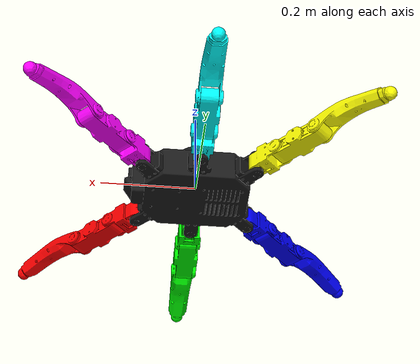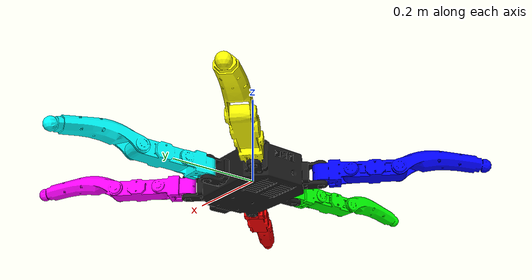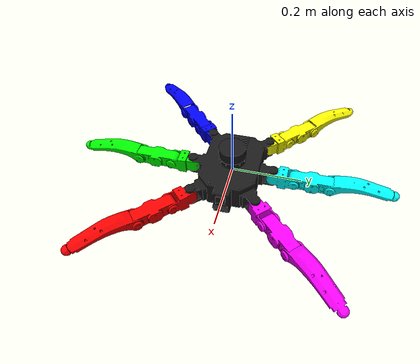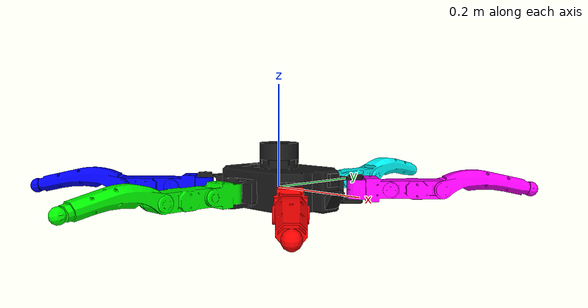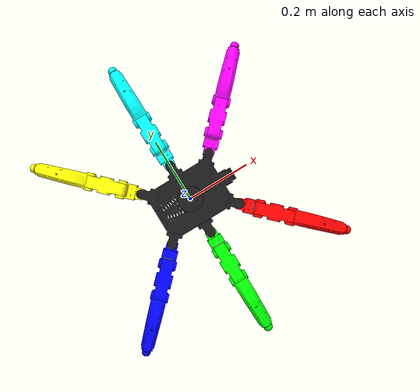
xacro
<robot xmlns:xacro="http://ros.org/wiki/xacro" name="hexapod">

  <xacro:arg name="controllers_file" default=""/>
  <!-- Waveshare ST3215 at 12 V: 2.94 N·m stall torque, 0.222 s/60° no-load speed -->
  <xacro:property name="servo_effort" value="2.94"/>
  <xacro:property name="servo_velocity" value="4.7"/>
  <!-- Femur range from the CAD meshes: raising it hits the coxa bracket at -100 deg, lowering it
       with the knee folded puts the tibia into the body at +86 deg. Both ~10 deg inside contact. -->
  <xacro:property name="femur_lower" value="-1.6"/>
  <xacro:property name="femur_upper" value="1.4"/>
  <xacro:property name="tibia_lower" value="-0.78"/>
  <xacro:property name="tibia_upper" value="2.63"/>
  <!-- ros2_control hardware: gazebo, mock or st3215 (see hexapod.ros2_control.xacro) -->
  <xacro:arg name="hardware" default="mock"/>
  <xacro:arg name="serial_port" default="/dev/ttyAMA0"/>

  <!-- ================= CONSTANTS ================= -->
  <!-- Measured from Hexapod_V6.1 (joint caps and feet). base_link sits on the hip plane, the
       height of the femur axes, 33.85 mm above the bottom of the body. -->
  <xacro:property name="coxa_length" value="0.063"/>    <!-- coxa axis to femur axis, level -->
  <xacro:property name="femur_length" value="0.1"/>     <!-- femur axis to knee axis -->
  <!-- Knee axis to the bottom of the foot, along the straight line through the curved tibia
       (171.95 mm to the foot ball's centre, plus its 14 mm radius) -->
  <xacro:property name="tibia_length" value="0.186"/>
  <xacro:property name="middle_leg_y" value="0.11836"/>
  <xacro:property name="corner_leg_x" value="0.11916"/>
  <xacro:property name="corner_leg_y" value="0.08952"/>
  <!-- Meshes are exported from the STEP in mm, already in each link's frame. The tibia's shank sits
       where tibia_length assumes, its foot ball 171.9 mm from the knee. -->
  <xacro:property name="mesh_scale" value="0.001 0.001 0.001"/>

  <!-- Masses and inertias from the CAD (scripts/mass_properties.py) -->
  <xacro:include filename="$(find hexapod_description)/urdf/hexapod.inertials.xacro"/>

  <!-- ================= MATERIALS ================= -->
  <material name="black"><color rgba="0.1 0.1 0.1 1"/></material>
  <material name="red"><color rgba="1 0 0 1"/></material>
  <material name="green"><color rgba="0 1 0 1"/></material>
  <material name="blue"><color rgba="0 0 1 1"/></material>
  <material name="yellow"><color rgba="1 1 0 1"/></material>
  <material name="cyan"><color rgba="0 1 1 1"/></material>
  <material name="magenta"><color rgba="1 0 1 1"/></material>

  <!-- ================= BASE ================= -->
  <link name="base_link">
    <visual>
      <geometry>
        <mesh filename="package://hexapod_description/meshes/body.stl" scale="${mesh_scale}"/>
      </geometry>
      <material name="black"/>
    </visual>
    <collision>
      <geometry>
        <mesh filename="package://hexapod_description/meshes/body.stl" scale="${mesh_scale}"/>
      </geometry>
    </collision>
    <xacro:hexapod_base_inertial/>
  </link>

<!-- ================= LEG LINKS ================= -->
<!-- side: left or right, the left legs being mirror images of the right -->
<xacro:macro name="leg" params="name side x_offset y_offset yaw colour">

  <!-- COXA -->
  <link name="${name}_coxa">
    <visual>
      <geometry>
        <mesh filename="package://hexapod_description/meshes/coxa_${side}.stl" scale="${mesh_scale}"/>
      </geometry>
      <material name="${colour}"/>
    </visual>
    <collision>
      <geometry>
        <mesh filename="package://hexapod_description/meshes/coxa_${side}.stl" scale="${mesh_scale}"/>
      </geometry>
    </collision>
    <xacro:hexapod_leg_inertial link="coxa" side="${side}"/>
  </link>

  <!-- FEMUR -->
  <link name="${name}_femur">
    <visual>
      <geometry>
        <mesh filename="package://hexapod_description/meshes/femur_${side}.stl" scale="${mesh_scale}"/>
      </geometry>
      <material name="${colour}"/>
    </visual>
    <collision>
      <geometry>
        <mesh filename="package://hexapod_description/meshes/femur_${side}.stl" scale="${mesh_scale}"/>
      </geometry>
    </collision>
    <xacro:hexapod_leg_inertial link="femur" side="${side}"/>
  </link>

  <!-- TIBIA -->
  <link name="${name}_tibia">
    <visual>
      <geometry>
        <mesh filename="package://hexapod_description/meshes/tibia_${side}.stl" scale="${mesh_scale}"/>
      </geometry>
      <material name="${colour}"/>
    </visual>
    <collision>
      <geometry>
        <mesh filename="package://hexapod_description/meshes/tibia_${side}.stl" scale="${mesh_scale}"/>
      </geometry>
    </collision>
    <xacro:hexapod_leg_inertial link="tibia" side="${side}"/>
  </link>

  <!-- COXA JOINT -->
  <joint name="${name}_coxa_joint" type="revolute">
    <parent link="base_link"/>
    <child link="${name}_coxa"/>
    <origin xyz="${x_offset} ${y_offset} 0" rpy="0 0 ${yaw}"/>
    <axis xyz="0 0 1"/>
    <limit lower="-1.57" upper="1.57" effort="${servo_effort}" velocity="${servo_velocity}"/>
  </joint>

  <!-- FEMUR JOINT -->
  <joint name="${name}_femur_joint" type="revolute">
    <parent link="${name}_coxa"/>
    <child link="${name}_femur"/>
    <origin xyz="${coxa_length} 0 0" rpy="0 0 0"/>
    <axis xyz="0 1 0"/>
    <limit lower="${femur_lower}" upper="${femur_upper}" effort="${servo_effort}" velocity="${servo_velocity}"/>
  </joint>

  <!-- TIBIA JOINT -->
  <joint name="${name}_tibia_joint" type="revolute">
    <parent link="${name}_femur"/>
    <child link="${name}_tibia"/>
    <origin xyz="${femur_length} 0 0" rpy="0 0 0"/>  <!-- 0: in line with the femur -->
    <axis xyz="0 1 0"/>
    <limit lower="${tibia_lower}" upper="${tibia_upper}" effort="${servo_effort}" velocity="${servo_velocity}"/>
  </joint>

  <!-- COXA TRANSMISSION -->
  <transmission name="${name}_coxa_trans">
    <type>transmission_interface/SimpleTransmission</type>
    <joint name="${name}_coxa_joint">
      <hardwareInterface>PositionJointInterface</hardwareInterface>
    </joint>
    <actuator name="${name}_coxa_motor">
      <hardwareInterface>PositionJointInterface</hardwareInterface>
      <mechanicalReduction>1</mechanicalReduction>
    </actuator>
  </transmission>

  <!-- FEMUR TRANSMISSION -->
  <transmission name="${name}_femur_trans">
    <type>transmission_interface/SimpleTransmission</type>
    <joint name="${name}_femur_joint">
      <hardwareInterface>PositionJointInterface</hardwareInterface>
    </joint>
    <actuator name="${name}_femur_motor">
      <hardwareInterface>PositionJointInterface</hardwareInterface>
      <mechanicalReduction>1</mechanicalReduction>
    </actuator>
  </transmission>

  <!-- TIBIA TRANSMISSION -->
  <transmission name="${name}_tibia_trans">
    <type>transmission_interface/SimpleTransmission</type>
    <joint name="${name}_tibia_joint">
      <hardwareInterface>PositionJointInterface</hardwareInterface>
    </joint>
    <actuator name="${name}_tibia_motor">
      <hardwareInterface>PositionJointInterface</hardwareInterface>
      <mechanicalReduction>1</mechanicalReduction>
    </actuator>
  </transmission>

</xacro:macro>

  <!-- ================= LEGS ================= -->
  <!-- Body frame follows REP 103: +x forward, +y left, +z up -->

  <!-- Front right -->
  <xacro:leg name="leg1" side="right" x_offset="${corner_leg_x}" y_offset="${-corner_leg_y}" yaw="${-pi / 4}" colour="red"/>

  <!-- Middle right -->
  <xacro:leg name="leg2" side="right" x_offset="0" y_offset="${-middle_leg_y}" yaw="${-pi / 2}" colour="green"/>

  <!-- Rear right -->
  <xacro:leg name="leg3" side="right" x_offset="${-corner_leg_x}" y_offset="${-corner_leg_y}" yaw="${-3 * pi / 4}" colour="blue"/>

  <!-- Rear left -->
  <xacro:leg name="leg4" side="left" x_offset="${-corner_leg_x}" y_offset="${corner_leg_y}" yaw="${3 * pi / 4}" colour="yellow"/>

  <!-- Middle left -->
  <xacro:leg name="leg5" side="left" x_offset="0" y_offset="${middle_leg_y}" yaw="${pi / 2}" colour="cyan"/>

  <!-- Front left -->
  <xacro:leg name="leg6" side="left" x_offset="${corner_leg_x}" y_offset="${corner_leg_y}" yaw="${pi / 4}" colour="magenta"/>

  <!-- ================= IMU ================= -->
  <link name="imu_link"/>

  <joint name="imu_joint" type="fixed">
    <parent link="base_link"/>
    <child link="imu_link"/>
    <origin xyz="0.0 0.0 0.03" rpy="0 0 0"/>
  </joint>

  <!-- ================= LIDAR ================= -->
  <xacro:include filename="$(find hexapod_description)/urdf/hexapod.lidar.xacro"/>
  <xacro:hexapod_lidar/>

  <!-- ================= CAMERAS ================= -->
  <xacro:include filename="$(find hexapod_description)/urdf/hexapod.cameras.xacro"/>
  <xacro:hexapod_cameras/>

  <!-- ================= ROS2 CONTROL ================= -->
  <xacro:include filename="$(find hexapod_description)/urdf/hexapod.ros2_control.xacro"/>
  <xacro:hexapod_ros2_control hardware="$(arg hardware)" serial_port="$(arg serial_port)"/>

  <xacro:if value="${'$(arg hardware)' == 'gazebo'}">
    <gazebo>
      <plugin name="gz_ros2_control::GazeboSimROS2ControlPlugin" filename="libgz_ros2_control-system.so">
        <parameters>$(arg controllers_file)</parameters>
      </plugin>
    </gazebo>
  </xacro:if>

</robot>

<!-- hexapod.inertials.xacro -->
<!-- Generated by scripts/mass_properties.py from Hexapod_V6.1.step, edit that instead.
     Whole robot 3.323 kg. Printed parts are at 60% of solid until weighed. -->
<robot xmlns:xacro="http://ros.org/wiki/xacro">

  <xacro:macro name="hexapod_base_inertial">
    <inertial>
      <mass value="1.1082"/>
      <origin xyz="-0.00433 0.00009 0.00993"/>
      <inertia ixx="3.4133e-03" ixy="-1.1081e-06" ixz="-5.7272e-05" iyy="5.8450e-03" iyz="6.0138e-08" izz="7.2937e-03"/>
    </inertial>
  </xacro:macro>

  <!-- link: coxa, femur or tibia; side: left or right -->
  <xacro:macro name="hexapod_leg_inertial" params="link side">
    <xacro:if value="${link == 'coxa' and side == 'left'}">
      <inertial>
        <mass value="0.0934"/>
        <origin xyz="0.02018 0.00006 -0.00074"/>
        <inertia ixx="2.3501e-05" ixy="6.6404e-10" ixz="3.6137e-07" iyy="4.3357e-05" iyz="1.7523e-08" izz="4.4608e-05"/>
      </inertial>
    </xacro:if>
    <xacro:if value="${link == 'coxa' and side == 'right'}">
      <inertial>
        <mass value="0.0934"/>
        <origin xyz="0.02018 -0.00006 -0.00074"/>
        <inertia ixx="2.3501e-05" ixy="-6.6404e-10" ixz="3.6137e-07" iyy="4.3357e-05" iyz="-1.7523e-08" izz="4.4608e-05"/>
      </inertial>
    </xacro:if>
    <xacro:if value="${link == 'femur' and side == 'left'}">
      <inertial>
        <mass value="0.1724"/>
        <origin xyz="0.05000 0.00002 -0.00000"/>
        <inertia ixx="3.3923e-05" ixy="-4.3970e-14" ixz="-4.0729e-07" iyy="2.3291e-04" iyz="-2.4257e-14" izz="2.4153e-04"/>
      </inertial>
    </xacro:if>
    <xacro:if value="${link == 'femur' and side == 'right'}">
      <inertial>
        <mass value="0.1724"/>
        <origin xyz="0.05000 -0.00002 -0.00000"/>
        <inertia ixx="3.3923e-05" ixy="4.3970e-14" ixz="-4.0729e-07" iyy="2.3291e-04" iyz="2.4257e-14" izz="2.4153e-04"/>
      </inertial>
    </xacro:if>
    <xacro:if value="${link == 'tibia' and side == 'left'}">
      <inertial>
        <mass value="0.1034"/>
        <origin xyz="0.07831 -0.00000 0.01279"/>
        <inertia ixx="2.7891e-05" ixy="4.6243e-10" ixz="1.3841e-05" iyy="2.3494e-04" iyz="-2.0572e-10" izz="2.3960e-04"/>
      </inertial>
    </xacro:if>
    <xacro:if value="${link == 'tibia' and side == 'right'}">
      <inertial>
        <mass value="0.1034"/>
        <origin xyz="0.07831 0.00000 0.01279"/>
        <inertia ixx="2.7891e-05" ixy="-4.6243e-10" ixz="1.3841e-05" iyy="2.3494e-04" iyz="2.0572e-10" izz="2.3960e-04"/>
      </inertial>
    </xacro:if>
  </xacro:macro>

</robot>

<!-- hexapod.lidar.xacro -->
<robot xmlns:xacro="http://ros.org/wiki/xacro">

  <!--
    RPLIDAR A2M12 mount, shared by the real and Gazebo models so they stay in the same place.
    Placed as on the V6.1 body (Hexapod_V6.1.step).
  -->
  <xacro:property name="lidar_x" value="0.0"/>
  <xacro:property name="lidar_y" value="0.0"/>
  <xacro:property name="lidar_z" value="0.067"/>
  <xacro:property name="lidar_radius" value="0.038"/>
  <xacro:property name="lidar_height" value="0.041"/>

  <xacro:macro name="hexapod_lidar">
    <link name="lidar_link">
      <visual>
        <geometry><cylinder length="${lidar_height}" radius="${lidar_radius}"/></geometry>
        <material name="black"/>
      </visual>
      <collision>
        <geometry><cylinder length="${lidar_height}" radius="${lidar_radius}"/></geometry>
      </collision>
      <!-- Its mass is in base_link's inertial (hexapod.inertials.xacro); fixed joints are merged into base_link -->
      <inertial>
        <mass value="0.001"/>
        <inertia ixx="1e-8" ixy="0" ixz="0" iyy="1e-8" iyz="0" izz="1e-8"/>
      </inertial>
    </link>

    <joint name="lidar_joint" type="fixed">
      <parent link="base_link"/>
      <child link="lidar_link"/>
      <origin xyz="${lidar_x} ${lidar_y} ${lidar_z}" rpy="0 0 0"/>
    </joint>
  </xacro:macro>

</robot>

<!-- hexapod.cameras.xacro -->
<robot xmlns:xacro="http://ros.org/wiki/xacro">

  <xacro:property name="camera_x" value="0.138"/>        <!-- front of the camera pod -->
  <xacro:property name="tof_z" value="-0.0124"/>
  <xacro:property name="tof_pitch" value="${radians(30)}"/>
  <xacro:property name="picam_z" value="0.0257"/>
  <xacro:property name="picam_pitch" value="0.0"/>

  <xacro:macro name="hexapod_cameras">
    <link name="front_depth_camera_link">
      <visual>
        <geometry><box size="0.01 0.038 0.038"/></geometry>
        <material name="black"/>
      </visual>
      <collision>
        <geometry><box size="0.01 0.038 0.038"/></geometry>
      </collision>
      <!-- Its mass is in base_link's inertial (hexapod.inertials.xacro); fixed joints are merged into base_link -->
      <inertial>
        <mass value="0.001"/>
        <inertia ixx="1e-8" ixy="0" ixz="0" iyy="1e-8" iyz="0" izz="1e-8"/>
      </inertial>
    </link>
    <joint name="front_depth_camera_joint" type="fixed">
      <parent link="base_link"/>
      <child link="front_depth_camera_link"/>
      <origin xyz="${camera_x} 0 ${tof_z}" rpy="0 ${tof_pitch} 0"/>
    </joint>

    <link name="camera_link">
      <visual>
        <geometry><box size="0.01 0.025 0.024"/></geometry>
        <material name="black"/>
      </visual>
      <collision>
        <geometry><box size="0.01 0.025 0.024"/></geometry>
      </collision>
      <!-- Its mass is in base_link's inertial (hexapod.inertials.xacro); fixed joints are merged into base_link -->
      <inertial>
        <mass value="0.001"/>
        <inertia ixx="1e-8" ixy="0" ixz="0" iyy="1e-8" iyz="0" izz="1e-8"/>
      </inertial>
    </link>
    <joint name="camera_joint" type="fixed">
      <parent link="base_link"/>
      <child link="camera_link"/>
      <origin xyz="${camera_x} 0 ${picam_z}" rpy="0 ${picam_pitch} 0"/>
    </joint>
  </xacro:macro>

</robot>
